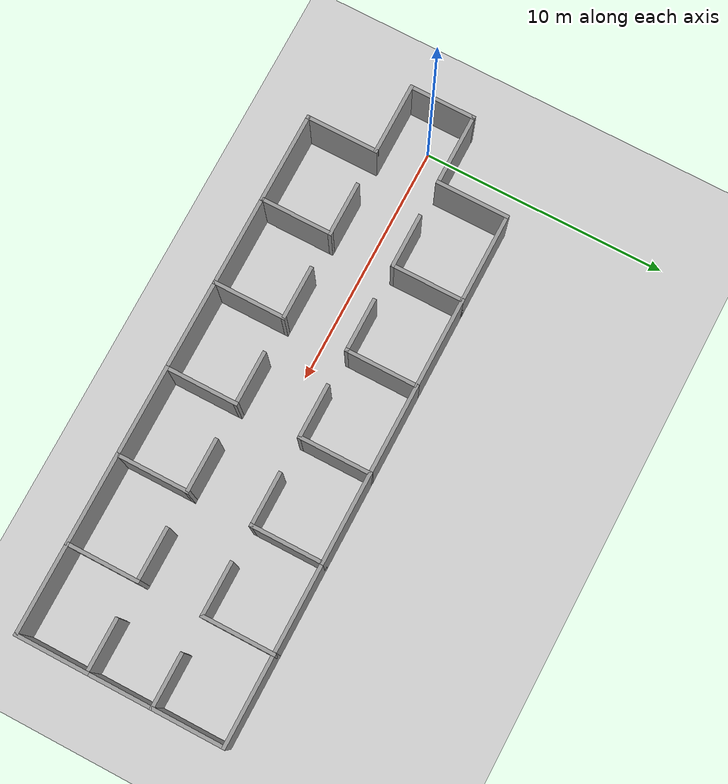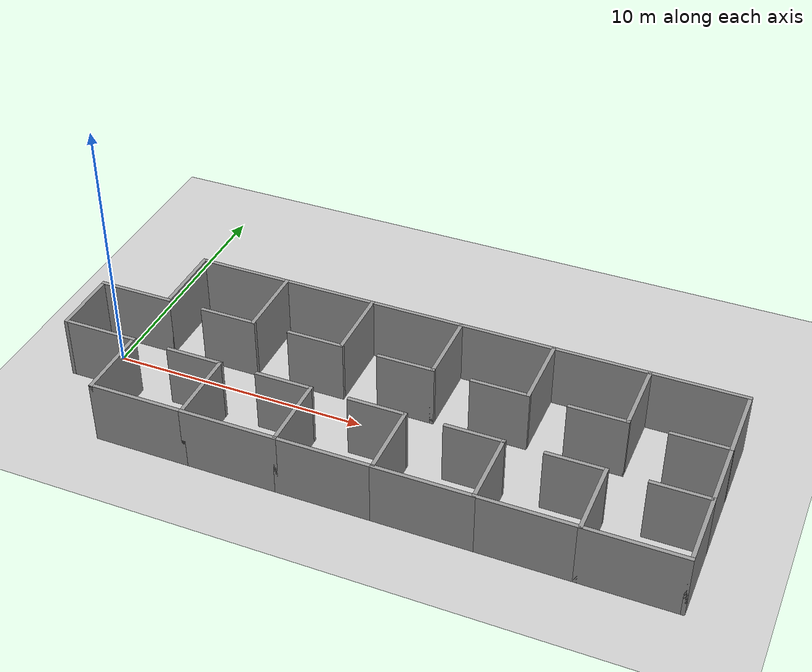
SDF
<sdf version="1.7">
 <world name="default">
  <light name="sun" type="directional">
   <pose>0 0 10 0 -0 0</pose>
   <diffuse>0.8 0.8 0.8 1</diffuse>
   <specular>0.2 0.2 0.2 1</specular>
   <attenuation>
    <range>1000</range>
    <constant>0.9</constant>
    <linear>0.01</linear>
    <quadratic>0.001</quadratic>
   </attenuation>
   <direction>-0.5 0.1 -0.9</direction>
   <spot><inner_angle>0</inner_angle><outer_angle>0</outer_angle><falloff>0</falloff></spot>
  </light>
  <model name="ground_plane">
   <static>1</static>
   <link name="link">
    <collision name="collision">
     <geometry><plane><normal>0 0 1</normal><size>100 100</size></plane></geometry>
     <surface><friction><ode><mu>100</mu><mu2>50</mu2></ode></friction></surface>
    </collision>
    <visual name="visual">
     <cast_shadows>0</cast_shadows>
     <geometry><plane><normal>0 0 1</normal><size>100 100</size></plane></geometry>
     <material>
      <script><uri>file://media/materials/scripts/gazebo.material</uri><name>Gazebo/Grey</name></script>
     </material>
    </visual>
   </link>
  </model>
  <gravity>0 0 -9.8</gravity>
  <magnetic_field>6e-06 2.3e-05 -4.2e-05</magnetic_field>
  <atmosphere type="adiabatic"/>
  <physics type="ode">
   <max_step_size>0.001</max_step_size>
   <real_time_factor>1</real_time_factor>
   <real_time_update_rate>1000</real_time_update_rate>
  </physics>
  <scene><ambient>0.4 0.4 0.4 1</ambient><background>0.7 0.7 0.7 1</background><shadows>1</shadows></scene>
  <spherical_coordinates>
   <surface_model>EARTH_WGS84</surface_model>
   <latitude_deg>0</latitude_deg>
   <longitude_deg>0</longitude_deg>
   <elevation>0</elevation>
   <heading_deg>0</heading_deg>
  </spherical_coordinates>
  <model name="indoors_hotal">
   <pose>10.9758 -0.129699 -0 0 -0 0</pose>
   <link name="Wall_0">
    <collision name="Wall_0_Collision">
     <geometry><box><size>2.75 0.15 2.5</size></box></geometry>
     <pose>0 0 1.25 0 -0 0</pose>
    </collision>
    <visual name="Wall_0_Visual">
     <pose>0 0 1.25 0 -0 0</pose>
     <geometry><box><size>2.75 0.15 2.5</size></box></geometry>
     <material>
      <script><uri>file://media/materials/scripts/gazebo.material</uri><name>Gazebo/Grey</name></script>
      <ambient>1 1 1 1</ambient>
     </material>
     <meta><layer>0</layer></meta>
    </visual>
    <pose>-12.225 -0 0 0 -0 -1.5708</pose>
   </link>
   <link name="Wall_10">
    <collision name="Wall_10_Collision">
     <geometry><box><size>3 0.15 2.5</size></box></geometry>
     <pose>0 0 1.25 0 -0 0</pose>
    </collision>
    <visual name="Wall_10_Visual">
     <pose>0 0 1.25 0 -0 0</pose>
     <geometry><box><size>3 0.15 2.5</size></box></geometry>
     <material>
      <script><uri>file://media/materials/scripts/gazebo.material</uri><name>Gazebo/Grey</name></script>
      <ambient>1 1 1 1</ambient>
     </material>
     <meta><layer>0</layer></meta>
    </visual>
    <pose>-9.375 2.725 0 0 -0 1.5708</pose>
   </link>
   <link name="Wall_11">
    <collision name="Wall_11_Collision">
     <geometry><box><size>3.75 0.15 2.5</size></box></geometry>
     <pose>0 0 1.25 0 -0 0</pose>
    </collision>
    <visual name="Wall_11_Visual">
     <pose>0 0 1.25 0 -0 0</pose>
     <geometry><box><size>3.75 0.15 2.5</size></box></geometry>
     <material>
      <script><uri>file://media/materials/scripts/gazebo.material</uri><name>Gazebo/Grey</name></script>
      <ambient>1 1 1 1</ambient>
     </material>
     <meta><layer>0</layer></meta>
    </visual>
    <pose>-7.575 4.15 0 0 -0 0</pose>
   </link>
   <link name="Wall_12">
    <collision name="Wall_12_Collision">
     <geometry><box><size>3 0.15 2.5</size></box></geometry>
     <pose>0 0 1.25 0 -0 0</pose>
    </collision>
    <visual name="Wall_12_Visual">
     <pose>0 0 1.25 0 -0 0</pose>
     <geometry><box><size>3 0.15 2.5</size></box></geometry>
     <material>
      <script><uri>file://media/materials/scripts/gazebo.material</uri><name>Gazebo/Grey</name></script>
      <ambient>1 1 1 1</ambient>
     </material>
     <meta><layer>0</layer></meta>
    </visual>
    <pose>-5.775 2.725 0 0 -0 -1.5708</pose>
   </link>
   <link name="Wall_13">
    <collision name="Wall_13_Collision">
     <geometry><box><size>2.25 0.15 2.5</size></box></geometry>
     <pose>0 0 1.25 0 -0 0</pose>
    </collision>
    <visual name="Wall_13_Visual">
     <pose>0 0 1.25 0 -0 0</pose>
     <geometry><box><size>2.25 0.15 2.5</size></box></geometry>
     <material>
      <script><uri>file://media/materials/scripts/gazebo.material</uri><name>Gazebo/Grey</name></script>
      <ambient>1 1 1 1</ambient>
     </material>
     <meta><layer>0</layer></meta>
    </visual>
    <pose>-6.825 1.3 0 0 -0 3.14159</pose>
   </link>
   <link name="Wall_15">
    <collision name="Wall_15_Collision">
     <geometry><box><size>3.75 0.15 2.5</size></box></geometry>
     <pose>0 0 1.25 0 -0 0</pose>
    </collision>
    <visual name="Wall_15_Visual">
     <pose>0 0 1.25 0 -0 0</pose>
     <geometry><box><size>3.75 0.15 2.5</size></box></geometry>
     <material>
      <script><uri>file://media/materials/scripts/gazebo.material</uri><name>Gazebo/Grey</name></script>
      <ambient>1 1 1 1</ambient>
     </material>
     <meta><layer>0</layer></meta>
    </visual>
    <pose>-3.975 4.15 0 0 -0 0</pose>
   </link>
   <link name="Wall_16">
    <collision name="Wall_16_Collision">
     <geometry><box><size>3 0.15 2.5</size></box></geometry>
     <pose>0 0 1.25 0 -0 0</pose>
    </collision>
    <visual name="Wall_16_Visual">
     <pose>0 0 1.25 0 -0 0</pose>
     <geometry><box><size>3 0.15 2.5</size></box></geometry>
     <material>
      <script><uri>file://media/materials/scripts/gazebo.material</uri><name>Gazebo/Grey</name></script>
      <ambient>1 1 1 1</ambient>
     </material>
     <meta><layer>0</layer></meta>
    </visual>
    <pose>-2.175 2.725 0 0 -0 -1.5708</pose>
   </link>
   <link name="Wall_17">
    <collision name="Wall_17_Collision">
     <geometry><box><size>2.25 0.15 2.5</size></box></geometry>
     <pose>0 0 1.25 0 -0 0</pose>
    </collision>
    <visual name="Wall_17_Visual">
     <pose>0 0 1.25 0 -0 0</pose>
     <geometry><box><size>2.25 0.15 2.5</size></box></geometry>
     <material>
      <script><uri>file://media/materials/scripts/gazebo.material</uri><name>Gazebo/Grey</name></script>
      <ambient>1 1 1 1</ambient>
     </material>
     <meta><layer>0</layer></meta>
    </visual>
    <pose>-3.225 1.3 0 0 -0 3.14159</pose>
   </link>
   <link name="Wall_19">
    <collision name="Wall_19_Collision">
     <geometry><box><size>3.75 0.15 2.5</size></box></geometry>
     <pose>0 0 1.25 0 -0 0</pose>
    </collision>
    <visual name="Wall_19_Visual">
     <pose>0 0 1.25 0 -0 0</pose>
     <geometry><box><size>3.75 0.15 2.5</size></box></geometry>
     <material>
      <script><uri>file://media/materials/scripts/gazebo.material</uri><name>Gazebo/Grey</name></script>
      <ambient>1 1 1 1</ambient>
     </material>
     <meta><layer>0</layer></meta>
    </visual>
    <pose>-3.975 -4.15 0 0 -0 0</pose>
   </link>
   <link name="Wall_2">
    <collision name="Wall_2_Collision">
     <geometry><box><size>3 0.15 2.5</size></box></geometry>
     <pose>0 0 1.25 0 -0 0</pose>
    </collision>
    <visual name="Wall_2_Visual">
     <pose>0 0 1.25 0 -0 0</pose>
     <geometry><box><size>3 0.15 2.5</size></box></geometry>
     <material>
      <script><uri>file://media/materials/scripts/gazebo.material</uri><name>Gazebo/Grey</name></script>
      <ambient>1 1 1 1</ambient>
     </material>
     <meta><layer>0</layer></meta>
    </visual>
    <pose>-10.8 -1.3 0 0 -0 0</pose>
   </link>
   <link name="Wall_20">
    <collision name="Wall_20_Collision">
     <geometry><box><size>3 0.15 2.5</size></box></geometry>
     <pose>0 0 1.25 0 -0 0</pose>
    </collision>
    <visual name="Wall_20_Visual">
     <pose>0 0 1.25 0 -0 0</pose>
     <geometry><box><size>3 0.15 2.5</size></box></geometry>
     <material>
      <script><uri>file://media/materials/scripts/gazebo.material</uri><name>Gazebo/Grey</name></script>
      <ambient>1 1 1 1</ambient>
     </material>
     <meta><layer>0</layer></meta>
    </visual>
    <pose>-2.175 -2.725 0 0 -0 1.5708</pose>
   </link>
   <link name="Wall_21">
    <collision name="Wall_21_Collision">
     <geometry><box><size>2.25 0.15 2.5</size></box></geometry>
     <pose>0 0 1.25 0 -0 0</pose>
    </collision>
    <visual name="Wall_21_Visual">
     <pose>0 0 1.25 0 -0 0</pose>
     <geometry><box><size>2.25 0.15 2.5</size></box></geometry>
     <material>
      <script><uri>file://media/materials/scripts/gazebo.material</uri><name>Gazebo/Grey</name></script>
      <ambient>1 1 1 1</ambient>
     </material>
     <meta><layer>0</layer></meta>
    </visual>
    <pose>-3.225 -1.3 0 0 -0 3.14159</pose>
   </link>
   <link name="Wall_23">
    <collision name="Wall_23_Collision">
     <geometry><box><size>3.75 0.15 2.5</size></box></geometry>
     <pose>0 0 1.25 0 -0 0</pose>
    </collision>
    <visual name="Wall_23_Visual">
     <pose>0 0 1.25 0 -0 0</pose>
     <geometry><box><size>3.75 0.15 2.5</size></box></geometry>
     <material>
      <script><uri>file://media/materials/scripts/gazebo.material</uri><name>Gazebo/Grey</name></script>
      <ambient>1 1 1 1</ambient>
     </material>
     <meta><layer>0</layer></meta>
    </visual>
    <pose>-0.375 4.15 0 0 -0 0</pose>
   </link>
   <link name="Wall_24">
    <collision name="Wall_24_Collision">
     <geometry><box><size>3 0.15 2.5</size></box></geometry>
     <pose>0 0 1.25 0 -0 0</pose>
    </collision>
    <visual name="Wall_24_Visual">
     <pose>0 0 1.25 0 -0 0</pose>
     <geometry><box><size>3 0.15 2.5</size></box></geometry>
     <material>
      <script><uri>file://media/materials/scripts/gazebo.material</uri><name>Gazebo/Grey</name></script>
      <ambient>1 1 1 1</ambient>
     </material>
     <meta><layer>0</layer></meta>
    </visual>
    <pose>1.425 2.725 0 0 -0 -1.5708</pose>
   </link>
   <link name="Wall_25">
    <collision name="Wall_25_Collision">
     <geometry><box><size>2.25 0.15 2.5</size></box></geometry>
     <pose>0 0 1.25 0 -0 0</pose>
    </collision>
    <visual name="Wall_25_Visual">
     <pose>0 0 1.25 0 -0 0</pose>
     <geometry><box><size>2.25 0.15 2.5</size></box></geometry>
     <material>
      <script><uri>file://media/materials/scripts/gazebo.material</uri><name>Gazebo/Grey</name></script>
      <ambient>1 1 1 1</ambient>
     </material>
     <meta><layer>0</layer></meta>
    </visual>
    <pose>0.375 1.3 0 0 -0 3.14159</pose>
   </link>
   <link name="Wall_27">
    <collision name="Wall_27_Collision">
     <geometry><box><size>3.75 0.15 2.5</size></box></geometry>
     <pose>0 0 1.25 0 -0 0</pose>
    </collision>
    <visual name="Wall_27_Visual">
     <pose>0 0 1.25 0 -0 0</pose>
     <geometry><box><size>3.75 0.15 2.5</size></box></geometry>
     <material>
      <script><uri>file://media/materials/scripts/gazebo.material</uri><name>Gazebo/Grey</name></script>
      <ambient>1 1 1 1</ambient>
     </material>
     <meta><layer>0</layer></meta>
    </visual>
    <pose>-0.375 -4.15 0 0 -0 0</pose>
   </link>
   <link name="Wall_28">
    <collision name="Wall_28_Collision">
     <geometry><box><size>3 0.15 2.5</size></box></geometry>
     <pose>0 0 1.25 0 -0 0</pose>
    </collision>
    <visual name="Wall_28_Visual">
     <pose>0 0 1.25 0 -0 0</pose>
     <geometry><box><size>3 0.15 2.5</size></box></geometry>
     <material>
      <script><uri>file://media/materials/scripts/gazebo.material</uri><name>Gazebo/Grey</name></script>
      <ambient>1 1 1 1</ambient>
     </material>
     <meta><layer>0</layer></meta>
    </visual>
    <pose>1.425 -2.725 0 0 -0 1.5708</pose>
   </link>
   <link name="Wall_29">
    <collision name="Wall_29_Collision">
     <geometry><box><size>2.25 0.15 2.5</size></box></geometry>
     <pose>0 0 1.25 0 -0 0</pose>
    </collision>
    <visual name="Wall_29_Visual">
     <pose>0 0 1.25 0 -0 0</pose>
     <geometry><box><size>2.25 0.15 2.5</size></box></geometry>
     <material>
      <script><uri>file://media/materials/scripts/gazebo.material</uri><name>Gazebo/Grey</name></script>
      <ambient>1 1 1 1</ambient>
     </material>
     <meta><layer>0</layer></meta>
    </visual>
    <pose>0.375 -1.3 0 0 -0 3.14159</pose>
   </link>
   <link name="Wall_31">
    <collision name="Wall_31_Collision">
     <geometry><box><size>3.75 0.15 2.5</size></box></geometry>
     <pose>0 0 1.25 0 -0 0</pose>
    </collision>
    <visual name="Wall_31_Visual">
     <pose>0 0 1.25 0 -0 0</pose>
     <geometry><box><size>3.75 0.15 2.5</size></box></geometry>
     <material>
      <script><uri>file://media/materials/scripts/gazebo.material</uri><name>Gazebo/Grey</name></script>
      <ambient>1 1 1 1</ambient>
     </material>
     <meta><layer>0</layer></meta>
    </visual>
    <pose>3.225 4.15 0 0 -0 0</pose>
   </link>
   <link name="Wall_32">
    <collision name="Wall_32_Collision">
     <geometry><box><size>3 0.15 2.5</size></box></geometry>
     <pose>0 0 1.25 0 -0 0</pose>
    </collision>
    <visual name="Wall_32_Visual">
     <pose>0 0 1.25 0 -0 0</pose>
     <geometry><box><size>3 0.15 2.5</size></box></geometry>
     <material>
      <script><uri>file://media/materials/scripts/gazebo.material</uri><name>Gazebo/Grey</name></script>
      <ambient>1 1 1 1</ambient>
     </material>
     <meta><layer>0</layer></meta>
    </visual>
    <pose>5.025 2.725 0 0 -0 -1.5708</pose>
   </link>
   <link name="Wall_33">
    <collision name="Wall_33_Collision">
     <geometry><box><size>2.25 0.15 2.5</size></box></geometry>
     <pose>0 0 1.25 0 -0 0</pose>
    </collision>
    <visual name="Wall_33_Visual">
     <pose>0 0 1.25 0 -0 0</pose>
     <geometry><box><size>2.25 0.15 2.5</size></box></geometry>
     <material>
      <script><uri>file://media/materials/scripts/gazebo.material</uri><name>Gazebo/Grey</name></script>
      <ambient>1 1 1 1</ambient>
     </material>
     <meta><layer>0</layer></meta>
    </visual>
    <pose>3.975 1.3 0 0 -0 3.14159</pose>
   </link>
   <link name="Wall_35">
    <collision name="Wall_35_Collision">
     <geometry><box><size>3.75 0.15 2.5</size></box></geometry>
     <pose>0 0 1.25 0 -0 0</pose>
    </collision>
    <visual name="Wall_35_Visual">
     <pose>0 0 1.25 0 -0 0</pose>
     <geometry><box><size>3.75 0.15 2.5</size></box></geometry>
     <material>
      <script><uri>file://media/materials/scripts/gazebo.material</uri><name>Gazebo/Grey</name></script>
      <ambient>1 1 1 1</ambient>
     </material>
     <meta><layer>0</layer></meta>
    </visual>
    <pose>6.825 4.15 0 0 -0 0</pose>
   </link>
   <link name="Wall_36">
    <collision name="Wall_36_Collision">
     <geometry><box><size>3 0.15 2.5</size></box></geometry>
     <pose>0 0 1.25 0 -0 0</pose>
    </collision>
    <visual name="Wall_36_Visual">
     <pose>0 0 1.25 0 -0 0</pose>
     <geometry><box><size>3 0.15 2.5</size></box></geometry>
     <material>
      <script><uri>file://media/materials/scripts/gazebo.material</uri><name>Gazebo/Grey</name></script>
      <ambient>1 1 1 1</ambient>
     </material>
     <meta><layer>0</layer></meta>
    </visual>
    <pose>8.625 2.725 0 0 -0 -1.5708</pose>
   </link>
   <link name="Wall_37">
    <collision name="Wall_37_Collision">
     <geometry><box><size>2.25 0.15 2.5</size></box></geometry>
     <pose>0 0 1.25 0 -0 0</pose>
    </collision>
    <visual name="Wall_37_Visual">
     <pose>0 0 1.25 0 -0 0</pose>
     <geometry><box><size>2.25 0.15 2.5</size></box></geometry>
     <material>
      <script><uri>file://media/materials/scripts/gazebo.material</uri><name>Gazebo/Grey</name></script>
      <ambient>1 1 1 1</ambient>
     </material>
     <meta><layer>0</layer></meta>
    </visual>
    <pose>7.575 1.3 0 0 -0 3.14159</pose>
   </link>
   <link name="Wall_39">
    <collision name="Wall_39_Collision">
     <geometry><box><size>3.75 0.15 2.5</size></box></geometry>
     <pose>0 0 1.25 0 -0 0</pose>
    </collision>
    <visual name="Wall_39_Visual">
     <pose>0 0 1.25 0 -0 0</pose>
     <geometry><box><size>3.75 0.15 2.5</size></box></geometry>
     <material>
      <script><uri>file://media/materials/scripts/gazebo.material</uri><name>Gazebo/Grey</name></script>
      <ambient>1 1 1 1</ambient>
     </material>
     <meta><layer>0</layer></meta>
    </visual>
    <pose>10.425 4.15 0 0 -0 0</pose>
   </link>
   <link name="Wall_4">
    <collision name="Wall_4_Collision">
     <geometry><box><size>3 0.15 2.5</size></box></geometry>
     <pose>0 0 1.25 0 -0 0</pose>
    </collision>
    <visual name="Wall_4_Visual">
     <pose>0 0 1.25 0 -0 0</pose>
     <geometry><box><size>3 0.15 2.5</size></box></geometry>
     <material>
      <script><uri>file://media/materials/scripts/gazebo.material</uri><name>Gazebo/Grey</name></script>
      <ambient>1 1 1 1</ambient>
     </material>
     <meta><layer>0</layer></meta>
    </visual>
    <pose>-9.375 -2.725 0 0 -0 -1.5708</pose>
   </link>
   <link name="Wall_40">
    <collision name="Wall_40_Collision">
     <geometry><box><size>3 0.15 2.5</size></box></geometry>
     <pose>0 0 1.25 0 -0 0</pose>
    </collision>
    <visual name="Wall_40_Visual">
     <pose>0 0 1.25 0 -0 0</pose>
     <geometry><box><size>3 0.15 2.5</size></box></geometry>
     <material>
      <script><uri>file://media/materials/scripts/gazebo.material</uri><name>Gazebo/Grey</name></script>
      <ambient>1 1 1 1</ambient>
     </material>
     <meta><layer>0</layer></meta>
    </visual>
    <pose>12.225 2.725 0 0 -0 -1.5708</pose>
   </link>
   <link name="Wall_41">
    <collision name="Wall_41_Collision">
     <geometry><box><size>2.25 0.15 2.5</size></box></geometry>
     <pose>0 0 1.25 0 -0 0</pose>
    </collision>
    <visual name="Wall_41_Visual">
     <pose>0 0 1.25 0 -0 0</pose>
     <geometry><box><size>2.25 0.15 2.5</size></box></geometry>
     <material>
      <script><uri>file://media/materials/scripts/gazebo.material</uri><name>Gazebo/Grey</name></script>
      <ambient>1 1 1 1</ambient>
     </material>
     <meta><layer>0</layer></meta>
    </visual>
    <pose>11.175 1.3 0 0 -0 3.14159</pose>
   </link>
   <link name="Wall_43">
    <collision name="Wall_43_Collision">
     <geometry><box><size>3.75 0.15 2.5</size></box></geometry>
     <pose>0 0 1.25 0 -0 0</pose>
    </collision>
    <visual name="Wall_43_Visual">
     <pose>0 0 1.25 0 -0 0</pose>
     <geometry><box><size>3.75 0.15 2.5</size></box></geometry>
     <material>
      <script><uri>file://media/materials/scripts/gazebo.material</uri><name>Gazebo/Grey</name></script>
      <ambient>1 1 1 1</ambient>
     </material>
     <meta><layer>0</layer></meta>
    </visual>
    <pose>3.225 -4.15 0 0 -0 0</pose>
   </link>
   <link name="Wall_44">
    <collision name="Wall_44_Collision">
     <geometry><box><size>3 0.15 2.5</size></box></geometry>
     <pose>0 0 1.25 0 -0 0</pose>
    </collision>
    <visual name="Wall_44_Visual">
     <pose>0 0 1.25 0 -0 0</pose>
     <geometry><box><size>3 0.15 2.5</size></box></geometry>
     <material>
      <script><uri>file://media/materials/scripts/gazebo.material</uri><name>Gazebo/Grey</name></script>
      <ambient>1 1 1 1</ambient>
     </material>
     <meta><layer>0</layer></meta>
    </visual>
    <pose>5.025 -2.725 0 0 -0 1.5708</pose>
   </link>
   <link name="Wall_45">
    <collision name="Wall_45_Collision">
     <geometry><box><size>2.25 0.15 2.5</size></box></geometry>
     <pose>0 0 1.25 0 -0 0</pose>
    </collision>
    <visual name="Wall_45_Visual">
     <pose>0 0 1.25 0 -0 0</pose>
     <geometry><box><size>2.25 0.15 2.5</size></box></geometry>
     <material>
      <script><uri>file://media/materials/scripts/gazebo.material</uri><name>Gazebo/Grey</name></script>
      <ambient>1 1 1 1</ambient>
     </material>
     <meta><layer>0</layer></meta>
    </visual>
    <pose>3.975 -1.3 0 0 -0 3.14159</pose>
   </link>
   <link name="Wall_47">
    <collision name="Wall_47_Collision">
     <geometry><box><size>3.75 0.15 2.5</size></box></geometry>
     <pose>0 0 1.25 0 -0 0</pose>
    </collision>
    <visual name="Wall_47_Visual">
     <pose>0 0 1.25 0 -0 0</pose>
     <geometry><box><size>3.75 0.15 2.5</size></box></geometry>
     <material>
      <script><uri>file://media/materials/scripts/gazebo.material</uri><name>Gazebo/Grey</name></script>
      <ambient>1 1 1 1</ambient>
     </material>
     <meta><layer>0</layer></meta>
    </visual>
    <pose>6.825 -4.15 0 0 -0 0</pose>
   </link>
   <link name="Wall_48">
    <collision name="Wall_48_Collision">
     <geometry><box><size>3 0.15 2.5</size></box></geometry>
     <pose>0 0 1.25 0 -0 0</pose>
    </collision>
    <visual name="Wall_48_Visual">
     <pose>0 0 1.25 0 -0 0</pose>
     <geometry><box><size>3 0.15 2.5</size></box></geometry>
     <material>
      <script><uri>file://media/materials/scripts/gazebo.material</uri><name>Gazebo/Grey</name></script>
      <ambient>1 1 1 1</ambient>
     </material>
     <meta><layer>0</layer></meta>
    </visual>
    <pose>8.625 -2.725 0 0 -0 1.5708</pose>
   </link>
   <link name="Wall_49">
    <collision name="Wall_49_Collision">
     <geometry><box><size>2.25 0.15 2.5</size></box></geometry>
     <pose>0 0 1.25 0 -0 0</pose>
    </collision>
    <visual name="Wall_49_Visual">
     <pose>0 0 1.25 0 -0 0</pose>
     <geometry><box><size>2.25 0.15 2.5</size></box></geometry>
     <material>
      <script><uri>file://media/materials/scripts/gazebo.material</uri><name>Gazebo/Grey</name></script>
      <ambient>1 1 1 1</ambient>
     </material>
     <meta><layer>0</layer></meta>
    </visual>
    <pose>7.575 -1.3 0 0 -0 3.14159</pose>
   </link>
   <link name="Wall_5">
    <collision name="Wall_5_Collision">
     <geometry><box><size>3.75 0.15 2.5</size></box></geometry>
     <pose>0 0 1.25 0 -0 0</pose>
    </collision>
    <visual name="Wall_5_Visual">
     <pose>0 0 1.25 0 -0 0</pose>
     <geometry><box><size>3.75 0.15 2.5</size></box></geometry>
     <material>
      <script><uri>file://media/materials/scripts/gazebo.material</uri><name>Gazebo/Grey</name></script>
      <ambient>1 1 1 1</ambient>
     </material>
     <meta><layer>0</layer></meta>
    </visual>
    <pose>-7.575 -4.15 0 0 -0 0</pose>
   </link>
   <link name="Wall_51">
    <collision name="Wall_51_Collision">
     <geometry><box><size>3.75 0.15 2.5</size></box></geometry>
     <pose>0 0 1.25 0 -0 0</pose>
    </collision>
    <visual name="Wall_51_Visual">
     <pose>0 0 1.25 0 -0 0</pose>
     <geometry><box><size>3.75 0.15 2.5</size></box></geometry>
     <material>
      <script><uri>file://media/materials/scripts/gazebo.material</uri><name>Gazebo/Grey</name></script>
      <ambient>1 1 1 1</ambient>
     </material>
     <meta><layer>0</layer></meta>
    </visual>
    <pose>10.425 -4.15 0 0 -0 0</pose>
   </link>
   <link name="Wall_52">
    <collision name="Wall_52_Collision">
     <geometry><box><size>3 0.15 2.5</size></box></geometry>
     <pose>0 0 1.25 0 -0 0</pose>
    </collision>
    <visual name="Wall_52_Visual">
     <pose>0 0 1.25 0 -0 0</pose>
     <geometry><box><size>3 0.15 2.5</size></box></geometry>
     <material>
      <script><uri>file://media/materials/scripts/gazebo.material</uri><name>Gazebo/Grey</name></script>
      <ambient>1 1 1 1</ambient>
     </material>
     <meta><layer>0</layer></meta>
    </visual>
    <pose>12.225 -2.725 0 0 -0 1.5708</pose>
   </link>
   <link name="Wall_53">
    <collision name="Wall_53_Collision">
     <geometry><box><size>2.25 0.15 2.5</size></box></geometry>
     <pose>0 0 1.25 0 -0 0</pose>
    </collision>
    <visual name="Wall_53_Visual">
     <pose>0 0 1.25 0 -0 0</pose>
     <geometry><box><size>2.25 0.15 2.5</size></box></geometry>
     <material>
      <script><uri>file://media/materials/scripts/gazebo.material</uri><name>Gazebo/Grey</name></script>
      <ambient>1 1 1 1</ambient>
     </material>
     <meta><layer>0</layer></meta>
    </visual>
    <pose>11.175 -1.3 0 0 -0 3.14159</pose>
   </link>
   <link name="Wall_55">
    <collision name="Wall_55_Collision">
     <geometry><box><size>2.75 0.15 2.5</size></box></geometry>
     <pose>0 0 1.25 0 -0 0</pose>
    </collision>
    <visual name="Wall_55_Visual">
     <pose>0 0 1.25 0 -0 0</pose>
     <geometry><box><size>2.75 0.15 2.5</size></box></geometry>
     <material>
      <script><uri>file://media/materials/scripts/gazebo.material</uri><name>Gazebo/Grey</name></script>
      <ambient>1 1 1 1</ambient>
     </material>
     <meta><layer>0</layer></meta>
    </visual>
    <pose>12.225 -0 0 0 -0 1.5708</pose>
   </link>
   <link name="Wall_6">
    <collision name="Wall_6_Collision">
     <geometry><box><size>3 0.15 2.5</size></box></geometry>
     <pose>0 0 1.25 0 -0 0</pose>
    </collision>
    <visual name="Wall_6_Visual">
     <pose>0 0 1.25 0 -0 0</pose>
     <geometry><box><size>3 0.15 2.5</size></box></geometry>
     <material>
      <script><uri>file://media/materials/scripts/gazebo.material</uri><name>Gazebo/Grey</name></script>
      <ambient>1 1 1 1</ambient>
     </material>
     <meta><layer>0</layer></meta>
    </visual>
    <pose>-5.775 -2.725 0 0 -0 1.5708</pose>
   </link>
   <link name="Wall_7">
    <collision name="Wall_7_Collision">
     <geometry><box><size>2.25 0.15 2.5</size></box></geometry>
     <pose>0 0 1.25 0 -0 0</pose>
    </collision>
    <visual name="Wall_7_Visual">
     <pose>0 0 1.25 0 -0 0</pose>
     <geometry><box><size>2.25 0.15 2.5</size></box></geometry>
     <material>
      <script><uri>file://media/materials/scripts/gazebo.material</uri><name>Gazebo/Grey</name></script>
      <ambient>1 1 1 1</ambient>
     </material>
     <meta><layer>0</layer></meta>
    </visual>
    <pose>-6.825 -1.3 0 0 -0 3.14159</pose>
   </link>
   <link name="Wall_9">
    <collision name="Wall_9_Collision">
     <geometry><box><size>3 0.15 2.5</size></box></geometry>
     <pose>0 0 1.25 0 -0 0</pose>
    </collision>
    <visual name="Wall_9_Visual">
     <pose>0 0 1.25 0 -0 0</pose>
     <geometry><box><size>3 0.15 2.5</size></box></geometry>
     <material>
      <script><uri>file://media/materials/scripts/gazebo.material</uri><name>Gazebo/Grey</name></script>
      <ambient>1 1 1 1</ambient>
     </material>
     <meta><layer>0</layer></meta>
    </visual>
    <pose>-10.8 1.3 0 0 -0 0</pose>
   </link>
   <static>1</static>
  </model>
 </world>
</sdf>
